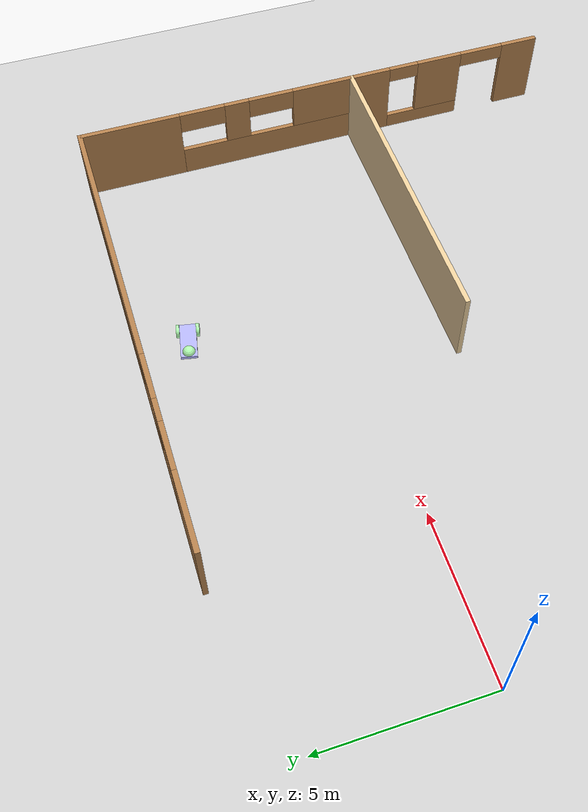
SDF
<sdf version="1.6">
 <world name="default">
  <model name="ground_plane">
   <static>1</static>
   <link name="link">
    <collision name="collision">
     <geometry><plane><normal>0 0 1</normal><size>100 100</size></plane></geometry>
     <surface><friction><ode><mu>100</mu><mu2>50</mu2></ode></friction></surface>
    </collision>
    <visual name="visual">
     <cast_shadows>0</cast_shadows>
     <geometry><plane><normal>0 0 1</normal><size>100 100</size></plane></geometry>
     <material>
      <script><uri>file://media/materials/scripts/gazebo.material</uri><name>Gazebo/Grey</name></script>
     </material>
    </visual>
   </link>
  </model>
  <model name="mymodel_2">
   <link name="Wall_123">
    <pose>26.275 -1.25 0 0 -0 0</pose>
    <visual name="Wall_123_Visual">
     <pose>0 0 1.25 0 -0 0</pose>
     <geometry><box><size>10 0.15 2.5</size></box></geometry>
     <material>
      <script><uri>file://media/materials/scripts/gazebo.material</uri><name>Gazebo/Grey</name></script>
      <ambient>0.921569 0.807843 0.615686 1</ambient>
      <shader type="pixel"/>
      <diffuse>0.7 0.7 0.7 1</diffuse>
      <specular>0.01 0.01 0.01 1</specular>
      <emissive>0 0 0 1</emissive>
     </material>
    </visual>
    <collision name="Wall_123_Collision">
     <pose>0 0 1.25 0 -0 0</pose>
     <geometry><box><size>10 0.15 2.5</size></box></geometry>
     <surface>
      <friction>
       <ode><mu>1</mu><mu2>1</mu2><fdir1>0 0 0</fdir1><slip1>0</slip1><slip2>0</slip2></ode>
       <torsional>
        <coefficient>1</coefficient>
        <patch_radius>0</patch_radius>
        <surface_radius>0</surface_radius>
        <use_patch_radius>1</use_patch_radius>
        <ode><slip>0</slip></ode>
       </torsional>
      </friction>
      <bounce><restitution_coefficient>0</restitution_coefficient><threshold>1e+06</threshold></bounce>
      <contact>
       <collide_without_contact>0</collide_without_contact>
       <collide_without_contact_bitmask>1</collide_without_contact_bitmask>
       <collide_bitmask>1</collide_bitmask>
       <ode>
        <soft_cfm>0</soft_cfm>
        <soft_erp>0.2</soft_erp>
        <kp>1e+13</kp>
        <kd>1</kd>
        <max_vel>0.01</max_vel>
        <min_depth>0</min_depth>
       </ode>
       <bullet>
        <split_impulse>1</split_impulse>
        <split_impulse_penetration_threshold>-0.01</split_impulse_penetration_threshold>
        <soft_cfm>0</soft_cfm>
        <soft_erp>0.2</soft_erp>
        <kp>1e+13</kp>
        <kd>1</kd>
       </bullet>
      </contact>
     </surface>
    </collision>
   </link>
   <link name="Wall_166">
    <pose>31.2 -4.55 0 0 0 -1.5708</pose>
    <visual name="Wall_166_Visual_0">
     <pose>-2.6617 0 1.25 0 -0 0</pose>
     <geometry><box><size>1.4266 0.15 2.5</size></box></geometry>
     <material>
      <script><uri>file://media/materials/scripts/gazebo.material</uri><name>Gazebo/Wood</name></script>
      <ambient>0.996078 0.47451 0.0196078 1</ambient>
      <shader type="pixel"/>
      <diffuse>1 1 1 1</diffuse>
      <specular>0.2 0.2 0.2 1</specular>
      <emissive>0 0 0 1</emissive>
     </material>
    </visual>
    <visual name="Wall_166_Visual_1">
     <pose>2.74194 0 1.25 0 -0 0</pose>
     <geometry><box><size>1.26611 0.15 2.5</size></box></geometry>
     <material>
      <script><uri>file://media/materials/scripts/gazebo.material</uri><name>Gazebo/Wood</name></script>
      <ambient>0.996078 0.47451 0.0196078 1</ambient>
      <shader type="pixel"/>
      <diffuse>1 1 1 1</diffuse>
      <specular>0.2 0.2 0.2 1</specular>
      <emissive>0 0 0 1</emissive>
     </material>
    </visual>
    <visual name="Wall_166_Visual_2">
     <pose>-0.669753 0 0.25 0 -0 0</pose>
     <geometry><box><size>2.55729 0.15 0.5</size></box></geometry>
     <material>
      <script><uri>file://media/materials/scripts/gazebo.material</uri><name>Gazebo/Wood</name></script>
      <ambient>0.996078 0.47451 0.0196078 1</ambient>
      <shader type="pixel"/>
      <diffuse>1 1 1 1</diffuse>
      <specular>0.2 0.2 0.2 1</specular>
      <emissive>0 0 0 1</emissive>
     </material>
    </visual>
    <visual name="Wall_166_Visual_3">
     <pose>-0.169753 0 1.5 0 -0 0</pose>
     <geometry><box><size>1.55729 0.15 2</size></box></geometry>
     <material>
      <script><uri>file://media/materials/scripts/gazebo.material</uri><name>Gazebo/Wood</name></script>
      <ambient>0.996078 0.47451 0.0196078 1</ambient>
      <shader type="pixel"/>
      <diffuse>1 1 1 1</diffuse>
      <specular>0.2 0.2 0.2 1</specular>
      <emissive>0 0 0 1</emissive>
     </material>
    </visual>
    <visual name="Wall_166_Visual_4">
     <pose>-1.4484 0 2.25 0 -0 0</pose>
     <geometry><box><size>1 0.15 0.5</size></box></geometry>
     <material>
      <script><uri>file://media/materials/scripts/gazebo.material</uri><name>Gazebo/Wood</name></script>
      <ambient>0.996078 0.47451 0.0196078 1</ambient>
      <shader type="pixel"/>
      <diffuse>1 1 1 1</diffuse>
      <specular>0.2 0.2 0.2 1</specular>
      <emissive>0 0 0 1</emissive>
     </material>
    </visual>
    <visual name="Wall_166_Visual_5">
     <pose>1.35889 0 2.25 0 -0 0</pose>
     <geometry><box><size>1.5 0.15 0.5</size></box></geometry>
     <material>
      <script><uri>file://media/materials/scripts/gazebo.material</uri><name>Gazebo/Wood</name></script>
      <ambient>0.996078 0.47451 0.0196078 1</ambient>
      <shader type="pixel"/>
      <diffuse>1 1 1 1</diffuse>
      <specular>0.2 0.2 0.2 1</specular>
      <emissive>0 0 0 1</emissive>
     </material>
    </visual>
    <collision name="Wall_166_Collision_3">
     <pose>-0.169753 0 1.5 0 -0 0</pose>
     <geometry><box><size>1.55729 0.15 2</size></box></geometry>
     <surface>
      <friction>
       <ode><mu>1</mu><mu2>1</mu2><fdir1>0 0 0</fdir1><slip1>0</slip1><slip2>0</slip2></ode>
       <torsional>
        <coefficient>1</coefficient>
        <patch_radius>0</patch_radius>
        <surface_radius>0</surface_radius>
        <use_patch_radius>1</use_patch_radius>
        <ode><slip>0</slip></ode>
       </torsional>
      </friction>
      <bounce><restitution_coefficient>0</restitution_coefficient><threshold>1e+06</threshold></bounce>
      <contact>
       <collide_without_contact>0</collide_without_contact>
       <collide_without_contact_bitmask>1</collide_without_contact_bitmask>
       <collide_bitmask>1</collide_bitmask>
       <ode>
        <soft_cfm>0</soft_cfm>
        <soft_erp>0.2</soft_erp>
        <kp>1e+13</kp>
        <kd>1</kd>
        <max_vel>0.01</max_vel>
        <min_depth>0</min_depth>
       </ode>
       <bullet>
        <split_impulse>1</split_impulse>
        <split_impulse_penetration_threshold>-0.01</split_impulse_penetration_threshold>
        <soft_cfm>0</soft_cfm>
        <soft_erp>0.2</soft_erp>
        <kp>1e+13</kp>
        <kd>1</kd>
       </bullet>
      </contact>
     </surface>
    </collision>
    <collision name="Wall_166_Collision_0">
     <pose>-2.6617 0 1.25 0 -0 0</pose>
     <geometry><box><size>1.4266 0.15 2.5</size></box></geometry>
     <surface>
      <friction>
       <ode><mu>1</mu><mu2>1</mu2><fdir1>0 0 0</fdir1><slip1>0</slip1><slip2>0</slip2></ode>
       <torsional>
        <coefficient>1</coefficient>
        <patch_radius>0</patch_radius>
        <surface_radius>0</surface_radius>
        <use_patch_radius>1</use_patch_radius>
        <ode><slip>0</slip></ode>
       </torsional>
      </friction>
      <bounce><restitution_coefficient>0</restitution_coefficient><threshold>1e+06</threshold></bounce>
      <contact>
       <collide_without_contact>0</collide_without_contact>
       <collide_without_contact_bitmask>1</collide_without_contact_bitmask>
       <collide_bitmask>1</collide_bitmask>
       <ode>
        <soft_cfm>0</soft_cfm>
        <soft_erp>0.2</soft_erp>
        <kp>1e+13</kp>
        <kd>1</kd>
        <max_vel>0.01</max_vel>
        <min_depth>0</min_depth>
       </ode>
       <bullet>
        <split_impulse>1</split_impulse>
        <split_impulse_penetration_threshold>-0.01</split_impulse_penetration_threshold>
        <soft_cfm>0</soft_cfm>
        <soft_erp>0.2</soft_erp>
        <kp>1e+13</kp>
        <kd>1</kd>
       </bullet>
      </contact>
     </surface>
    </collision>
    <collision name="Wall_166_Collision_1">
     <pose>2.74194 0 1.25 0 -0 0</pose>
     <geometry><box><size>1.26611 0.15 2.5</size></box></geometry>
     <surface>
      <friction>
       <ode><mu>1</mu><mu2>1</mu2><fdir1>0 0 0</fdir1><slip1>0</slip1><slip2>0</slip2></ode>
       <torsional>
        <coefficient>1</coefficient>
        <patch_radius>0</patch_radius>
        <surface_radius>0</surface_radius>
        <use_patch_radius>1</use_patch_radius>
        <ode><slip>0</slip></ode>
       </torsional>
      </friction>
      <bounce><restitution_coefficient>0</restitution_coefficient><threshold>1e+06</threshold></bounce>
      <contact>
       <collide_without_contact>0</collide_without_contact>
       <collide_without_contact_bitmask>1</collide_without_contact_bitmask>
       <collide_bitmask>1</collide_bitmask>
       <ode>
        <soft_cfm>0</soft_cfm>
        <soft_erp>0.2</soft_erp>
        <kp>1e+13</kp>
        <kd>1</kd>
        <max_vel>0.01</max_vel>
        <min_depth>0</min_depth>
       </ode>
       <bullet>
        <split_impulse>1</split_impulse>
        <split_impulse_penetration_threshold>-0.01</split_impulse_penetration_threshold>
        <soft_cfm>0</soft_cfm>
        <soft_erp>0.2</soft_erp>
        <kp>1e+13</kp>
        <kd>1</kd>
       </bullet>
      </contact>
     </surface>
    </collision>
    <collision name="Wall_166_Collision_2">
     <pose>-0.669753 0 0.25 0 -0 0</pose>
     <geometry><box><size>2.55729 0.15 0.5</size></box></geometry>
     <surface>
      <friction>
       <ode><mu>1</mu><mu2>1</mu2><fdir1>0 0 0</fdir1><slip1>0</slip1><slip2>0</slip2></ode>
       <torsional>
        <coefficient>1</coefficient>
        <patch_radius>0</patch_radius>
        <surface_radius>0</surface_radius>
        <use_patch_radius>1</use_patch_radius>
        <ode><slip>0</slip></ode>
       </torsional>
      </friction>
      <bounce><restitution_coefficient>0</restitution_coefficient><threshold>1e+06</threshold></bounce>
      <contact>
       <collide_without_contact>0</collide_without_contact>
       <collide_without_contact_bitmask>1</collide_without_contact_bitmask>
       <collide_bitmask>1</collide_bitmask>
       <ode>
        <soft_cfm>0</soft_cfm>
        <soft_erp>0.2</soft_erp>
        <kp>1e+13</kp>
        <kd>1</kd>
        <max_vel>0.01</max_vel>
        <min_depth>0</min_depth>
       </ode>
       <bullet>
        <split_impulse>1</split_impulse>
        <split_impulse_penetration_threshold>-0.01</split_impulse_penetration_threshold>
        <soft_cfm>0</soft_cfm>
        <soft_erp>0.2</soft_erp>
        <kp>1e+13</kp>
        <kd>1</kd>
       </bullet>
      </contact>
     </surface>
    </collision>
    <collision name="Wall_166_Collision_4">
     <pose>-1.4484 0 2.25 0 -0 0</pose>
     <geometry><box><size>1 0.15 0.5</size></box></geometry>
     <surface>
      <friction>
       <ode><mu>1</mu><mu2>1</mu2><fdir1>0 0 0</fdir1><slip1>0</slip1><slip2>0</slip2></ode>
       <torsional>
        <coefficient>1</coefficient>
        <patch_radius>0</patch_radius>
        <surface_radius>0</surface_radius>
        <use_patch_radius>1</use_patch_radius>
        <ode><slip>0</slip></ode>
       </torsional>
      </friction>
      <bounce><restitution_coefficient>0</restitution_coefficient><threshold>1e+06</threshold></bounce>
      <contact>
       <collide_without_contact>0</collide_without_contact>
       <collide_without_contact_bitmask>1</collide_without_contact_bitmask>
       <collide_bitmask>1</collide_bitmask>
       <ode>
        <soft_cfm>0</soft_cfm>
        <soft_erp>0.2</soft_erp>
        <kp>1e+13</kp>
        <kd>1</kd>
        <max_vel>0.01</max_vel>
        <min_depth>0</min_depth>
       </ode>
       <bullet>
        <split_impulse>1</split_impulse>
        <split_impulse_penetration_threshold>-0.01</split_impulse_penetration_threshold>
        <soft_cfm>0</soft_cfm>
        <soft_erp>0.2</soft_erp>
        <kp>1e+13</kp>
        <kd>1</kd>
       </bullet>
      </contact>
     </surface>
    </collision>
    <collision name="Wall_166_Collision_5">
     <pose>1.35889 0 2.25 0 -0 0</pose>
     <geometry><box><size>1.5 0.15 0.5</size></box></geometry>
     <surface>
      <friction>
       <ode><mu>1</mu><mu2>1</mu2><fdir1>0 0 0</fdir1><slip1>0</slip1><slip2>0</slip2></ode>
       <torsional>
        <coefficient>1</coefficient>
        <patch_radius>0</patch_radius>
        <surface_radius>0</surface_radius>
        <use_patch_radius>1</use_patch_radius>
        <ode><slip>0</slip></ode>
       </torsional>
      </friction>
      <bounce><restitution_coefficient>0</restitution_coefficient><threshold>1e+06</threshold></bounce>
      <contact>
       <collide_without_contact>0</collide_without_contact>
       <collide_without_contact_bitmask>1</collide_without_contact_bitmask>
       <collide_bitmask>1</collide_bitmask>
       <ode>
        <soft_cfm>0</soft_cfm>
        <soft_erp>0.2</soft_erp>
        <kp>1e+13</kp>
        <kd>1</kd>
        <max_vel>0.01</max_vel>
        <min_depth>0</min_depth>
       </ode>
       <bullet>
        <split_impulse>1</split_impulse>
        <split_impulse_penetration_threshold>-0.01</split_impulse_penetration_threshold>
        <soft_cfm>0</soft_cfm>
        <soft_erp>0.2</soft_erp>
        <kp>1e+13</kp>
        <kd>1</kd>
       </bullet>
      </contact>
     </surface>
    </collision>
   </link>
   <link name="Wall_29">
    <pose>23.775 7.85 0 0 -0 0</pose>
    <visual name="Wall_29_Visual_0">
     <pose>-6.31514 0 1.25 0 -0 0</pose>
     <geometry><box><size>2.36971 0.15 2.5</size></box></geometry>
     <material>
      <script><uri>file://media/materials/scripts/gazebo.material</uri><name>Gazebo/Wood</name></script>
      <ambient>0.996078 0.47451 0.0196078 1</ambient>
      <shader type="pixel"/>
      <diffuse>1 1 1 1</diffuse>
      <specular>0.2 0.2 0.2 1</specular>
      <emissive>0 0 0 1</emissive>
     </material>
    </visual>
    <visual name="Wall_29_Visual_1">
     <pose>1.18486 0 0.5 0 -0 0</pose>
     <geometry><box><size>12.6303 0.15 1</size></box></geometry>
     <material>
      <script><uri>file://media/materials/scripts/gazebo.material</uri><name>Gazebo/Wood</name></script>
      <ambient>0.996078 0.47451 0.0196078 1</ambient>
      <shader type="pixel"/>
      <diffuse>1 1 1 1</diffuse>
      <specular>0.2 0.2 0.2 1</specular>
      <emissive>0 0 0 1</emissive>
     </material>
    </visual>
    <visual name="Wall_29_Visual_2">
     <pose>-3.26225 0 1.75 0 -0 0</pose>
     <geometry><box><size>0.736064 0.15 1.5</size></box></geometry>
     <material>
      <script><uri>file://media/materials/scripts/gazebo.material</uri><name>Gazebo/Wood</name></script>
      <ambient>0.996078 0.47451 0.0196078 1</ambient>
      <shader type="pixel"/>
      <diffuse>1 1 1 1</diffuse>
      <specular>0.2 0.2 0.2 1</specular>
      <emissive>0 0 0 1</emissive>
     </material>
    </visual>
    <visual name="Wall_29_Visual_3">
     <pose>3.05289 0 1.75 0 -0 0</pose>
     <geometry><box><size>8.89422 0.15 1.5</size></box></geometry>
     <material>
      <script><uri>file://media/materials/scripts/gazebo.material</uri><name>Gazebo/Wood</name></script>
      <ambient>0.996078 0.47451 0.0196078 1</ambient>
      <shader type="pixel"/>
      <diffuse>1 1 1 1</diffuse>
      <specular>0.2 0.2 0.2 1</specular>
      <emissive>0 0 0 1</emissive>
     </material>
    </visual>
    <visual name="Wall_29_Visual_4">
     <pose>-4.38029 0 2.15 0 -0 0</pose>
     <geometry><box><size>1.5 0.15 0.7</size></box></geometry>
     <material>
      <script><uri>file://media/materials/scripts/gazebo.material</uri><name>Gazebo/Wood</name></script>
      <ambient>0.996078 0.47451 0.0196078 1</ambient>
      <shader type="pixel"/>
      <diffuse>1 1 1 1</diffuse>
      <specular>0.2 0.2 0.2 1</specular>
      <emissive>0 0 0 1</emissive>
     </material>
    </visual>
    <visual name="Wall_29_Visual_5">
     <pose>-2.14422 0 2.15 0 -0 0</pose>
     <geometry><box><size>1.5 0.15 0.7</size></box></geometry>
     <material>
      <script><uri>file://media/materials/scripts/gazebo.material</uri><name>Gazebo/Wood</name></script>
      <ambient>0.996078 0.47451 0.0196078 1</ambient>
      <shader type="pixel"/>
      <diffuse>1 1 1 1</diffuse>
      <specular>0.2 0.2 0.2 1</specular>
      <emissive>0 0 0 1</emissive>
     </material>
    </visual>
    <collision name="Wall_29_Collision_0">
     <pose>-6.31514 0 1.25 0 -0 0</pose>
     <geometry><box><size>2.36971 0.15 2.5</size></box></geometry>
     <surface>
      <friction>
       <ode><mu>1</mu><mu2>1</mu2><fdir1>0 0 0</fdir1><slip1>0</slip1><slip2>0</slip2></ode>
       <torsional>
        <coefficient>1</coefficient>
        <patch_radius>0</patch_radius>
        <surface_radius>0</surface_radius>
        <use_patch_radius>1</use_patch_radius>
        <ode><slip>0</slip></ode>
       </torsional>
      </friction>
      <bounce><restitution_coefficient>0</restitution_coefficient><threshold>1e+06</threshold></bounce>
      <contact>
       <collide_without_contact>0</collide_without_contact>
       <collide_without_contact_bitmask>1</collide_without_contact_bitmask>
       <collide_bitmask>1</collide_bitmask>
       <ode>
        <soft_cfm>0</soft_cfm>
        <soft_erp>0.2</soft_erp>
        <kp>1e+13</kp>
        <kd>1</kd>
        <max_vel>0.01</max_vel>
        <min_depth>0</min_depth>
       </ode>
       <bullet>
        <split_impulse>1</split_impulse>
        <split_impulse_penetration_threshold>-0.01</split_impulse_penetration_threshold>
        <soft_cfm>0</soft_cfm>
        <soft_erp>0.2</soft_erp>
        <kp>1e+13</kp>
        <kd>1</kd>
       </bullet>
      </contact>
     </surface>
    </collision>
    <collision name="Wall_29_Collision_1">
     <pose>1.18486 0 0.5 0 -0 0</pose>
     <geometry><box><size>12.6303 0.15 1</size></box></geometry>
     <surface>
      <friction>
       <ode><mu>1</mu><mu2>1</mu2><fdir1>0 0 0</fdir1><slip1>0</slip1><slip2>0</slip2></ode>
       <torsional>
        <coefficient>1</coefficient>
        <patch_radius>0</patch_radius>
        <surface_radius>0</surface_radius>
        <use_patch_radius>1</use_patch_radius>
        <ode><slip>0</slip></ode>
       </torsional>
      </friction>
      <bounce><restitution_coefficient>0</restitution_coefficient><threshold>1e+06</threshold></bounce>
      <contact>
       <collide_without_contact>0</collide_without_contact>
       <collide_without_contact_bitmask>1</collide_without_contact_bitmask>
       <collide_bitmask>1</collide_bitmask>
       <ode>
        <soft_cfm>0</soft_cfm>
        <soft_erp>0.2</soft_erp>
        <kp>1e+13</kp>
        <kd>1</kd>
        <max_vel>0.01</max_vel>
        <min_depth>0</min_depth>
       </ode>
       <bullet>
        <split_impulse>1</split_impulse>
        <split_impulse_penetration_threshold>-0.01</split_impulse_penetration_threshold>
        <soft_cfm>0</soft_cfm>
        <soft_erp>0.2</soft_erp>
        <kp>1e+13</kp>
        <kd>1</kd>
       </bullet>
      </contact>
     </surface>
    </collision>
    <collision name="Wall_29_Collision_2">
     <pose>-3.26225 0 1.75 0 -0 0</pose>
     <geometry><box><size>0.736064 0.15 1.5</size></box></geometry>
     <surface>
      <friction>
       <ode><mu>1</mu><mu2>1</mu2><fdir1>0 0 0</fdir1><slip1>0</slip1><slip2>0</slip2></ode>
       <torsional>
        <coefficient>1</coefficient>
        <patch_radius>0</patch_radius>
        <surface_radius>0</surface_radius>
        <use_patch_radius>1</use_patch_radius>
        <ode><slip>0</slip></ode>
       </torsional>
      </friction>
      <bounce><restitution_coefficient>0</restitution_coefficient><threshold>1e+06</threshold></bounce>
      <contact>
       <collide_without_contact>0</collide_without_contact>
       <collide_without_contact_bitmask>1</collide_without_contact_bitmask>
       <collide_bitmask>1</collide_bitmask>
       <ode>
        <soft_cfm>0</soft_cfm>
        <soft_erp>0.2</soft_erp>
        <kp>1e+13</kp>
        <kd>1</kd>
        <max_vel>0.01</max_vel>
        <min_depth>0</min_depth>
       </ode>
       <bullet>
        <split_impulse>1</split_impulse>
        <split_impulse_penetration_threshold>-0.01</split_impulse_penetration_threshold>
        <soft_cfm>0</soft_cfm>
        <soft_erp>0.2</soft_erp>
        <kp>1e+13</kp>
        <kd>1</kd>
       </bullet>
      </contact>
     </surface>
    </collision>
    <collision name="Wall_29_Collision_3">
     <pose>3.05289 0 1.75 0 -0 0</pose>
     <geometry><box><size>8.89422 0.15 1.5</size></box></geometry>
     <surface>
      <friction>
       <ode><mu>1</mu><mu2>1</mu2><fdir1>0 0 0</fdir1><slip1>0</slip1><slip2>0</slip2></ode>
       <torsional>
        <coefficient>1</coefficient>
        <patch_radius>0</patch_radius>
        <surface_radius>0</surface_radius>
        <use_patch_radius>1</use_patch_radius>
        <ode><slip>0</slip></ode>
       </torsional>
      </friction>
      <bounce><restitution_coefficient>0</restitution_coefficient><threshold>1e+06</threshold></bounce>
      <contact>
       <collide_without_contact>0</collide_without_contact>
       <collide_without_contact_bitmask>1</collide_without_contact_bitmask>
       <collide_bitmask>1</collide_bitmask>
       <ode>
        <soft_cfm>0</soft_cfm>
        <soft_erp>0.2</soft_erp>
        <kp>1e+13</kp>
        <kd>1</kd>
        <max_vel>0.01</max_vel>
        <min_depth>0</min_depth>
       </ode>
       <bullet>
        <split_impulse>1</split_impulse>
        <split_impulse_penetration_threshold>-0.01</split_impulse_penetration_threshold>
        <soft_cfm>0</soft_cfm>
        <soft_erp>0.2</soft_erp>
        <kp>1e+13</kp>
        <kd>1</kd>
       </bullet>
      </contact>
     </surface>
    </collision>
    <collision name="Wall_29_Collision_5">
     <pose>-2.14422 0 2.15 0 -0 0</pose>
     <geometry><box><size>1.5 0.15 0.7</size></box></geometry>
     <surface>
      <friction>
       <ode><mu>1</mu><mu2>1</mu2><fdir1>0 0 0</fdir1><slip1>0</slip1><slip2>0</slip2></ode>
       <torsional>
        <coefficient>1</coefficient>
        <patch_radius>0</patch_radius>
        <surface_radius>0</surface_radius>
        <use_patch_radius>1</use_patch_radius>
        <ode><slip>0</slip></ode>
       </torsional>
      </friction>
      <bounce><restitution_coefficient>0</restitution_coefficient><threshold>1e+06</threshold></bounce>
      <contact>
       <collide_without_contact>0</collide_without_contact>
       <collide_without_contact_bitmask>1</collide_without_contact_bitmask>
       <collide_bitmask>1</collide_bitmask>
       <ode>
        <soft_cfm>0</soft_cfm>
        <soft_erp>0.2</soft_erp>
        <kp>1e+13</kp>
        <kd>1</kd>
        <max_vel>0.01</max_vel>
        <min_depth>0</min_depth>
       </ode>
       <bullet>
        <split_impulse>1</split_impulse>
        <split_impulse_penetration_threshold>-0.01</split_impulse_penetration_threshold>
        <soft_cfm>0</soft_cfm>
        <soft_erp>0.2</soft_erp>
        <kp>1e+13</kp>
        <kd>1</kd>
       </bullet>
      </contact>
     </surface>
    </collision>
    <collision name="Wall_29_Collision_4">
     <pose>-4.38029 0 2.15 0 -0 0</pose>
     <geometry><box><size>1.5 0.15 0.7</size></box></geometry>
     <surface>
      <friction>
       <ode><mu>1</mu><mu2>1</mu2><fdir1>0 0 0</fdir1><slip1>0</slip1><slip2>0</slip2></ode>
       <torsional>
        <coefficient>1</coefficient>
        <patch_radius>0</patch_radius>
        <surface_radius>0</surface_radius>
        <use_patch_radius>1</use_patch_radius>
        <ode><slip>0</slip></ode>
       </torsional>
      </friction>
      <bounce><restitution_coefficient>0</restitution_coefficient><threshold>1e+06</threshold></bounce>
      <contact>
       <collide_without_contact>0</collide_without_contact>
       <collide_without_contact_bitmask>1</collide_without_contact_bitmask>
       <collide_bitmask>1</collide_bitmask>
       <ode>
        <soft_cfm>0</soft_cfm>
        <soft_erp>0.2</soft_erp>
        <kp>1e+13</kp>
        <kd>1</kd>
        <max_vel>0.01</max_vel>
        <min_depth>0</min_depth>
       </ode>
       <bullet>
        <split_impulse>1</split_impulse>
        <split_impulse_penetration_threshold>-0.01</split_impulse_penetration_threshold>
        <soft_cfm>0</soft_cfm>
        <soft_erp>0.2</soft_erp>
        <kp>1e+13</kp>
        <kd>1</kd>
       </bullet>
      </contact>
     </surface>
    </collision>
   </link>
   <link name="Wall_31">
    <pose>31.2 3.3 0 0 0 -1.5708</pose>
    <visual name="Wall_31_Visual_0">
     <pose>-2.97432 0 1.25 0 -0 0</pose>
     <geometry><box><size>3.30136 0.15 2.5</size></box></geometry>
     <material>
      <script><uri>file://media/materials/scripts/gazebo.material</uri><name>Gazebo/Wood</name></script>
      <ambient>0.996078 0.47451 0.0196078 1</ambient>
      <shader type="pixel"/>
      <diffuse>1 1 1 1</diffuse>
      <specular>0.2 0.2 0.2 1</specular>
      <emissive>0 0 0 1</emissive>
     </material>
    </visual>
    <visual name="Wall_31_Visual_1">
     <pose>1.65068 0 0.5 0 -0 0</pose>
     <geometry><box><size>5.94864 0.15 1</size></box></geometry>
     <material>
      <script><uri>file://media/materials/scripts/gazebo.material</uri><name>Gazebo/Wood</name></script>
      <ambient>0.996078 0.47451 0.0196078 1</ambient>
      <shader type="pixel"/>
      <diffuse>1 1 1 1</diffuse>
      <specular>0.2 0.2 0.2 1</specular>
      <emissive>0 0 0 1</emissive>
     </material>
    </visual>
    <visual name="Wall_31_Visual_2">
     <pose>0.58726 0 1.75 0 -0 0</pose>
     <geometry><box><size>0.821797 0.15 1.5</size></box></geometry>
     <material>
      <script><uri>file://media/materials/scripts/gazebo.material</uri><name>Gazebo/Wood</name></script>
      <ambient>0.996078 0.47451 0.0196078 1</ambient>
      <shader type="pixel"/>
      <diffuse>1 1 1 1</diffuse>
      <specular>0.2 0.2 0.2 1</specular>
      <emissive>0 0 0 1</emissive>
     </material>
    </visual>
    <visual name="Wall_31_Visual_3">
     <pose>3.56158 0 1.75 0 -0 0</pose>
     <geometry><box><size>2.12684 0.15 1.5</size></box></geometry>
     <material>
      <script><uri>file://media/materials/scripts/gazebo.material</uri><name>Gazebo/Wood</name></script>
      <ambient>0.996078 0.47451 0.0196078 1</ambient>
      <shader type="pixel"/>
      <diffuse>1 1 1 1</diffuse>
      <specular>0.2 0.2 0.2 1</specular>
      <emissive>0 0 0 1</emissive>
     </material>
    </visual>
    <visual name="Wall_31_Visual_4">
     <pose>-0.573638 0 2.15 0 -0 0</pose>
     <geometry><box><size>1.5 0.15 0.7</size></box></geometry>
     <material>
      <script><uri>file://media/materials/scripts/gazebo.material</uri><name>Gazebo/Wood</name></script>
      <ambient>0.996078 0.47451 0.0196078 1</ambient>
      <shader type="pixel"/>
      <diffuse>1 1 1 1</diffuse>
      <specular>0.2 0.2 0.2 1</specular>
      <emissive>0 0 0 1</emissive>
     </material>
    </visual>
    <visual name="Wall_31_Visual_5">
     <pose>1.74816 0 2.15 0 -0 0</pose>
     <geometry><box><size>1.5 0.15 0.7</size></box></geometry>
     <material>
      <script><uri>file://media/materials/scripts/gazebo.material</uri><name>Gazebo/Wood</name></script>
      <ambient>0.996078 0.47451 0.0196078 1</ambient>
      <shader type="pixel"/>
      <diffuse>1 1 1 1</diffuse>
      <specular>0.2 0.2 0.2 1</specular>
      <emissive>0 0 0 1</emissive>
     </material>
    </visual>
    <collision name="Wall_31_Collision_0">
     <pose>-2.97432 0 1.25 0 -0 0</pose>
     <geometry><box><size>3.30136 0.15 2.5</size></box></geometry>
     <surface>
      <friction>
       <ode><mu>1</mu><mu2>1</mu2><fdir1>0 0 0</fdir1><slip1>0</slip1><slip2>0</slip2></ode>
       <torsional>
        <coefficient>1</coefficient>
        <patch_radius>0</patch_radius>
        <surface_radius>0</surface_radius>
        <use_patch_radius>1</use_patch_radius>
        <ode><slip>0</slip></ode>
       </torsional>
      </friction>
      <bounce><restitution_coefficient>0</restitution_coefficient><threshold>1e+06</threshold></bounce>
      <contact>
       <collide_without_contact>0</collide_without_contact>
       <collide_without_contact_bitmask>1</collide_without_contact_bitmask>
       <collide_bitmask>1</collide_bitmask>
       <ode>
        <soft_cfm>0</soft_cfm>
        <soft_erp>0.2</soft_erp>
        <kp>1e+13</kp>
        <kd>1</kd>
        <max_vel>0.01</max_vel>
        <min_depth>0</min_depth>
       </ode>
       <bullet>
        <split_impulse>1</split_impulse>
        <split_impulse_penetration_threshold>-0.01</split_impulse_penetration_threshold>
        <soft_cfm>0</soft_cfm>
        <soft_erp>0.2</soft_erp>
        <kp>1e+13</kp>
        <kd>1</kd>
       </bullet>
      </contact>
     </surface>
    </collision>
    <collision name="Wall_31_Collision_2">
     <pose>0.58726 0 1.75 0 -0 0</pose>
     <geometry><box><size>0.821797 0.15 1.5</size></box></geometry>
     <surface>
      <friction>
       <ode><mu>1</mu><mu2>1</mu2><fdir1>0 0 0</fdir1><slip1>0</slip1><slip2>0</slip2></ode>
       <torsional>
        <coefficient>1</coefficient>
        <patch_radius>0</patch_radius>
        <surface_radius>0</surface_radius>
        <use_patch_radius>1</use_patch_radius>
        <ode><slip>0</slip></ode>
       </torsional>
      </friction>
      <bounce><restitution_coefficient>0</restitution_coefficient><threshold>1e+06</threshold></bounce>
      <contact>
       <collide_without_contact>0</collide_without_contact>
       <collide_without_contact_bitmask>1</collide_without_contact_bitmask>
       <collide_bitmask>1</collide_bitmask>
       <ode>
        <soft_cfm>0</soft_cfm>
        <soft_erp>0.2</soft_erp>
        <kp>1e+13</kp>
        <kd>1</kd>
        <max_vel>0.01</max_vel>
        <min_depth>0</min_depth>
       </ode>
       <bullet>
        <split_impulse>1</split_impulse>
        <split_impulse_penetration_threshold>-0.01</split_impulse_penetration_threshold>
        <soft_cfm>0</soft_cfm>
        <soft_erp>0.2</soft_erp>
        <kp>1e+13</kp>
        <kd>1</kd>
       </bullet>
      </contact>
     </surface>
    </collision>
    <collision name="Wall_31_Collision_1">
     <pose>1.65068 0 0.5 0 -0 0</pose>
     <geometry><box><size>5.94864 0.15 1</size></box></geometry>
     <surface>
      <friction>
       <ode><mu>1</mu><mu2>1</mu2><fdir1>0 0 0</fdir1><slip1>0</slip1><slip2>0</slip2></ode>
       <torsional>
        <coefficient>1</coefficient>
        <patch_radius>0</patch_radius>
        <surface_radius>0</surface_radius>
        <use_patch_radius>1</use_patch_radius>
        <ode><slip>0</slip></ode>
       </torsional>
      </friction>
      <bounce><restitution_coefficient>0</restitution_coefficient><threshold>1e+06</threshold></bounce>
      <contact>
       <collide_without_contact>0</collide_without_contact>
       <collide_without_contact_bitmask>1</collide_without_contact_bitmask>
       <collide_bitmask>1</collide_bitmask>
       <ode>
        <soft_cfm>0</soft_cfm>
        <soft_erp>0.2</soft_erp>
        <kp>1e+13</kp>
        <kd>1</kd>
        <max_vel>0.01</max_vel>
        <min_depth>0</min_depth>
       </ode>
       <bullet>
        <split_impulse>1</split_impulse>
        <split_impulse_penetration_threshold>-0.01</split_impulse_penetration_threshold>
        <soft_cfm>0</soft_cfm>
        <soft_erp>0.2</soft_erp>
        <kp>1e+13</kp>
        <kd>1</kd>
       </bullet>
      </contact>
     </surface>
    </collision>
    <collision name="Wall_31_Collision_3">
     <pose>3.56158 0 1.75 0 -0 0</pose>
     <geometry><box><size>2.12684 0.15 1.5</size></box></geometry>
     <surface>
      <friction>
       <ode><mu>1</mu><mu2>1</mu2><fdir1>0 0 0</fdir1><slip1>0</slip1><slip2>0</slip2></ode>
       <torsional>
        <coefficient>1</coefficient>
        <patch_radius>0</patch_radius>
        <surface_radius>0</surface_radius>
        <use_patch_radius>1</use_patch_radius>
        <ode><slip>0</slip></ode>
       </torsional>
      </friction>
      <bounce><restitution_coefficient>0</restitution_coefficient><threshold>1e+06</threshold></bounce>
      <contact>
       <collide_without_contact>0</collide_without_contact>
       <collide_without_contact_bitmask>1</collide_without_contact_bitmask>
       <collide_bitmask>1</collide_bitmask>
       <ode>
        <soft_cfm>0</soft_cfm>
        <soft_erp>0.2</soft_erp>
        <kp>1e+13</kp>
        <kd>1</kd>
        <max_vel>0.01</max_vel>
        <min_depth>0</min_depth>
       </ode>
       <bullet>
        <split_impulse>1</split_impulse>
        <split_impulse_penetration_threshold>-0.01</split_impulse_penetration_threshold>
        <soft_cfm>0</soft_cfm>
        <soft_erp>0.2</soft_erp>
        <kp>1e+13</kp>
        <kd>1</kd>
       </bullet>
      </contact>
     </surface>
    </collision>
    <collision name="Wall_31_Collision_5">
     <pose>1.74816 0 2.15 0 -0 0</pose>
     <geometry><box><size>1.5 0.15 0.7</size></box></geometry>
     <surface>
      <friction>
       <ode><mu>1</mu><mu2>1</mu2><fdir1>0 0 0</fdir1><slip1>0</slip1><slip2>0</slip2></ode>
       <torsional>
        <coefficient>1</coefficient>
        <patch_radius>0</patch_radius>
        <surface_radius>0</surface_radius>
        <use_patch_radius>1</use_patch_radius>
        <ode><slip>0</slip></ode>
       </torsional>
      </friction>
      <bounce><restitution_coefficient>0</restitution_coefficient><threshold>1e+06</threshold></bounce>
      <contact>
       <collide_without_contact>0</collide_without_contact>
       <collide_without_contact_bitmask>1</collide_without_contact_bitmask>
       <collide_bitmask>1</collide_bitmask>
       <ode>
        <soft_cfm>0</soft_cfm>
        <soft_erp>0.2</soft_erp>
        <kp>1e+13</kp>
        <kd>1</kd>
        <max_vel>0.01</max_vel>
        <min_depth>0</min_depth>
       </ode>
       <bullet>
        <split_impulse>1</split_impulse>
        <split_impulse_penetration_threshold>-0.01</split_impulse_penetration_threshold>
        <soft_cfm>0</soft_cfm>
        <soft_erp>0.2</soft_erp>
        <kp>1e+13</kp>
        <kd>1</kd>
       </bullet>
      </contact>
     </surface>
    </collision>
    <collision name="Wall_31_Collision_4">
     <pose>-0.573638 0 2.15 0 -0 0</pose>
     <geometry><box><size>1.5 0.15 0.7</size></box></geometry>
     <surface>
      <friction>
       <ode><mu>1</mu><mu2>1</mu2><fdir1>0 0 0</fdir1><slip1>0</slip1><slip2>0</slip2></ode>
       <torsional>
        <coefficient>1</coefficient>
        <patch_radius>0</patch_radius>
        <surface_radius>0</surface_radius>
        <use_patch_radius>1</use_patch_radius>
        <ode><slip>0</slip></ode>
       </torsional>
      </friction>
      <bounce><restitution_coefficient>0</restitution_coefficient><threshold>1e+06</threshold></bounce>
      <contact>
       <collide_without_contact>0</collide_without_contact>
       <collide_without_contact_bitmask>1</collide_without_contact_bitmask>
       <collide_bitmask>1</collide_bitmask>
       <ode>
        <soft_cfm>0</soft_cfm>
        <soft_erp>0.2</soft_erp>
        <kp>1e+13</kp>
        <kd>1</kd>
        <max_vel>0.01</max_vel>
        <min_depth>0</min_depth>
       </ode>
       <bullet>
        <split_impulse>1</split_impulse>
        <split_impulse_penetration_threshold>-0.01</split_impulse_penetration_threshold>
        <soft_cfm>0</soft_cfm>
        <soft_erp>0.2</soft_erp>
        <kp>1e+13</kp>
        <kd>1</kd>
       </bullet>
      </contact>
     </surface>
    </collision>
   </link>
   <static>1</static>
   <pose>-11.6418 -1.59752 0 0 -0 0</pose>
  </model>
  <model name="custom_robot">
   <link name="link_0">
    <pose>-0.1 0 0 0 -0 0</pose>
    <inertial>
     <mass>1</mass>
     <inertia>
      <ixx>0.166667</ixx>
      <ixy>0</ixy>
      <ixz>0</ixz>
      <iyy>0.166667</iyy>
      <iyz>0</iyz>
      <izz>0.166667</izz>
     </inertia>
    </inertial>
    <visual name="visual">
     <geometry><box><size>1.2 0.5 0.1</size></box></geometry>
     <material>
      <lighting>1</lighting>
      <script><uri>file://media/materials/scripts/gazebo.material</uri><name>Gazebo/Grey</name></script>
      <shader type="pixel"><normal_map>__default__</normal_map></shader>
      <ambient>0.3 0.3 1 1</ambient>
      <diffuse>0.7 0.7 1 1</diffuse>
      <specular>0.01 0.01 1 1</specular>
      <emissive>0 0 0 1</emissive>
     </material>
    </visual>
    <collision name="collision">
     <geometry><box><size>1.2 0.5 0.1</size></box></geometry>
     <surface>
      <friction>
       <ode><mu>1</mu><mu2>1</mu2><fdir1>0 0 0</fdir1><slip1>0</slip1><slip2>0</slip2></ode>
       <torsional>
        <coefficient>1</coefficient>
        <patch_radius>0</patch_radius>
        <surface_radius>0</surface_radius>
        <use_patch_radius>1</use_patch_radius>
        <ode><slip>0</slip></ode>
       </torsional>
      </friction>
      <bounce><restitution_coefficient>0</restitution_coefficient><threshold>1e+06</threshold></bounce>
      <contact>
       <collide_without_contact>0</collide_without_contact>
       <collide_without_contact_bitmask>1</collide_without_contact_bitmask>
       <collide_bitmask>1</collide_bitmask>
       <ode>
        <soft_cfm>0</soft_cfm>
        <soft_erp>0.2</soft_erp>
        <kp>1e+13</kp>
        <kd>1</kd>
        <max_vel>0.01</max_vel>
        <min_depth>0</min_depth>
       </ode>
       <bullet>
        <split_impulse>1</split_impulse>
        <split_impulse_penetration_threshold>-0.01</split_impulse_penetration_threshold>
        <soft_cfm>0</soft_cfm>
        <soft_erp>0.2</soft_erp>
        <kp>1e+13</kp>
        <kd>1</kd>
       </bullet>
      </contact>
     </surface>
    </collision>
   </link>
   <link name="link_1">
    <pose>0.3 -0.300019 0 1.5707 -0 0</pose>
    <inertial>
     <mass>1</mass>
     <inertia><ixx>0.145833</ixx><ixy>0</ixy><ixz>0</ixz><iyy>0.145833</iyy><iyz>0</iyz><izz>0.125</izz></inertia>
    </inertial>
    <visual name="visual">
     <geometry><cylinder><radius>0.2</radius><length>0.1</length></cylinder></geometry>
     <material>
      <lighting>1</lighting>
      <script><uri>file://media/materials/scripts/gazebo.material</uri><name>Gazebo/Grey</name></script>
      <shader type="pixel"><normal_map>__default__</normal_map></shader>
      <ambient>0.3 1 0.3 1</ambient>
      <diffuse>0.7 1 0.7 1</diffuse>
      <specular>0.01 1 0.01 1</specular>
      <emissive>0 0 0 1</emissive>
     </material>
    </visual>
    <collision name="collision">
     <geometry><cylinder><radius>0.2</radius><length>0.1</length></cylinder></geometry>
     <surface>
      <friction>
       <ode><mu>1</mu><mu2>1</mu2><fdir1>0 0 0</fdir1><slip1>0</slip1><slip2>0</slip2></ode>
       <torsional>
        <coefficient>1</coefficient>
        <patch_radius>0</patch_radius>
        <surface_radius>0</surface_radius>
        <use_patch_radius>1</use_patch_radius>
        <ode><slip>0</slip></ode>
       </torsional>
      </friction>
      <bounce><restitution_coefficient>0</restitution_coefficient><threshold>1e+06</threshold></bounce>
      <contact>
       <collide_without_contact>0</collide_without_contact>
       <collide_without_contact_bitmask>1</collide_without_contact_bitmask>
       <collide_bitmask>1</collide_bitmask>
       <ode>
        <soft_cfm>0</soft_cfm>
        <soft_erp>0.2</soft_erp>
        <kp>1e+13</kp>
        <kd>1</kd>
        <max_vel>0.01</max_vel>
        <min_depth>0</min_depth>
       </ode>
       <bullet>
        <split_impulse>1</split_impulse>
        <split_impulse_penetration_threshold>-0.01</split_impulse_penetration_threshold>
        <soft_cfm>0</soft_cfm>
        <soft_erp>0.2</soft_erp>
        <kp>1e+13</kp>
        <kd>1</kd>
       </bullet>
      </contact>
     </surface>
    </collision>
   </link>
   <link name="link_1_clone">
    <pose>0.3 0.300019 0 1.5707 -0 0</pose>
    <inertial>
     <mass>1</mass>
     <inertia><ixx>0.145833</ixx><ixy>0</ixy><ixz>0</ixz><iyy>0.145833</iyy><iyz>0</iyz><izz>0.125</izz></inertia>
    </inertial>
    <visual name="visual">
     <geometry><cylinder><radius>0.2</radius><length>0.1</length></cylinder></geometry>
     <material>
      <lighting>1</lighting>
      <script><uri>file://media/materials/scripts/gazebo.material</uri><name>Gazebo/Grey</name></script>
      <shader type="pixel"><normal_map>__default__</normal_map></shader>
      <ambient>0.3 1 0.3 1</ambient>
      <diffuse>0.7 1 0.7 1</diffuse>
      <specular>0.01 1 0.01 1</specular>
      <emissive>0 0 0 1</emissive>
     </material>
    </visual>
    <collision name="collision">
     <geometry><cylinder><radius>0.2</radius><length>0.1</length></cylinder></geometry>
     <surface>
      <friction>
       <ode><mu>1</mu><mu2>1</mu2><fdir1>0 0 0</fdir1><slip1>0</slip1><slip2>0</slip2></ode>
       <torsional>
        <coefficient>1</coefficient>
        <patch_radius>0</patch_radius>
        <surface_radius>0</surface_radius>
        <use_patch_radius>1</use_patch_radius>
        <ode><slip>0</slip></ode>
       </torsional>
      </friction>
      <bounce><restitution_coefficient>0</restitution_coefficient><threshold>1e+06</threshold></bounce>
      <contact>
       <collide_without_contact>0</collide_without_contact>
       <collide_without_contact_bitmask>1</collide_without_contact_bitmask>
       <collide_bitmask>1</collide_bitmask>
       <ode>
        <soft_cfm>0</soft_cfm>
        <soft_erp>0.2</soft_erp>
        <kp>1e+13</kp>
        <kd>1</kd>
        <max_vel>0.01</max_vel>
        <min_depth>0</min_depth>
       </ode>
       <bullet>
        <split_impulse>1</split_impulse>
        <split_impulse_penetration_threshold>-0.01</split_impulse_penetration_threshold>
        <soft_cfm>0</soft_cfm>
        <soft_erp>0.2</soft_erp>
        <kp>1e+13</kp>
        <kd>1</kd>
       </bullet>
      </contact>
     </surface>
    </collision>
   </link>
   <link name="link_2">
    <pose>-0.5 0 0 0 -0 0</pose>
    <inertial>
     <mass>1</mass>
     <inertia><ixx>0.1</ixx><ixy>0</ixy><ixz>0</ixz><iyy>0.1</iyy><iyz>0</iyz><izz>0.1</izz></inertia>
    </inertial>
    <visual name="visual">
     <geometry><sphere><radius>0.2</radius></sphere></geometry>
     <material>
      <lighting>1</lighting>
      <script><uri>file://media/materials/scripts/gazebo.material</uri><name>Gazebo/Grey</name></script>
      <shader type="pixel"><normal_map>__default__</normal_map></shader>
      <ambient>0.3 1 0.3 1</ambient>
      <diffuse>0.7 1 0.7 1</diffuse>
      <specular>0.01 1 0.01 1</specular>
      <emissive>0 0 0 1</emissive>
     </material>
    </visual>
    <collision name="collision">
     <geometry><sphere><radius>0.2</radius></sphere></geometry>
     <surface>
      <friction>
       <ode><mu>1</mu><mu2>1</mu2><fdir1>0 0 0</fdir1><slip1>0</slip1><slip2>0</slip2></ode>
       <torsional>
        <coefficient>1</coefficient>
        <patch_radius>0</patch_radius>
        <surface_radius>0</surface_radius>
        <use_patch_radius>1</use_patch_radius>
        <ode><slip>0</slip></ode>
       </torsional>
      </friction>
      <bounce><restitution_coefficient>0</restitution_coefficient><threshold>1e+06</threshold></bounce>
      <contact>
       <collide_without_contact>0</collide_without_contact>
       <collide_without_contact_bitmask>1</collide_without_contact_bitmask>
       <collide_bitmask>1</collide_bitmask>
       <ode>
        <soft_cfm>0</soft_cfm>
        <soft_erp>0.2</soft_erp>
        <kp>1e+13</kp>
        <kd>1</kd>
        <max_vel>0.01</max_vel>
        <min_depth>0</min_depth>
       </ode>
       <bullet>
        <split_impulse>1</split_impulse>
        <split_impulse_penetration_threshold>-0.01</split_impulse_penetration_threshold>
        <soft_cfm>0</soft_cfm>
        <soft_erp>0.2</soft_erp>
        <kp>1e+13</kp>
        <kd>1</kd>
       </bullet>
      </contact>
     </surface>
    </collision>
   </link>
   <joint name="link_0_JOINT_3" type="ball">
    <parent>link_0</parent>
    <child>link_2</child>
    <physics>
     <ode><limit><cfm>0</cfm><erp>0.2</erp></limit><suspension><cfm>0</cfm><erp>0.2</erp></suspension></ode>
    </physics>
   </joint>
   <joint name="link_0_JOINT_4" type="revolute">
    <parent>link_0</parent>
    <child>link_1</child>
    <axis>
     <xyz>1 0 0</xyz>
     <use_parent_model_frame>0</use_parent_model_frame>
     <limit>
      <lower>-1.79769e+308</lower>
      <upper>1.79769e+308</upper>
      <effort>-1</effort>
      <velocity>-1</velocity>
     </limit>
     <dynamics>
      <spring_reference>0</spring_reference>
      <spring_stiffness>0</spring_stiffness>
      <damping>0</damping>
     </dynamics>
    </axis>
    <physics>
     <ode><limit><cfm>0</cfm><erp>0.2</erp></limit><suspension><cfm>0</cfm><erp>0.2</erp></suspension></ode>
    </physics>
   </joint>
   <joint name="link_0_JOINT_5" type="revolute">
    <parent>link_0</parent>
    <child>link_1_clone</child>
    <axis>
     <xyz>1 0 0</xyz>
     <use_parent_model_frame>0</use_parent_model_frame>
     <limit>
      <lower>-1.79769e+308</lower>
      <upper>1.79769e+308</upper>
      <effort>-1</effort>
      <velocity>-1</velocity>
     </limit>
     <dynamics>
      <spring_reference>0</spring_reference>
      <spring_stiffness>0</spring_stiffness>
      <damping>0</damping>
     </dynamics>
    </axis>
    <physics>
     <ode><limit><cfm>0</cfm><erp>0.2</erp></limit><suspension><cfm>0</cfm><erp>0.2</erp></suspension></ode>
    </physics>
   </joint>
   <static>0</static>
   <pose>12.5113 4.71757 0.199999 4e-06 2e-06 -0.202617</pose>
  </model>
 </world>
</sdf>
